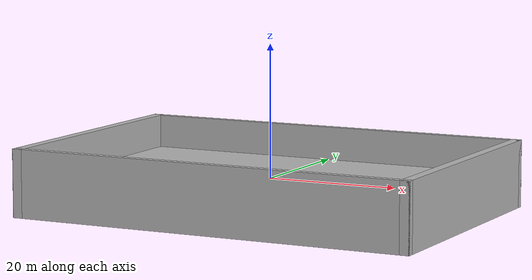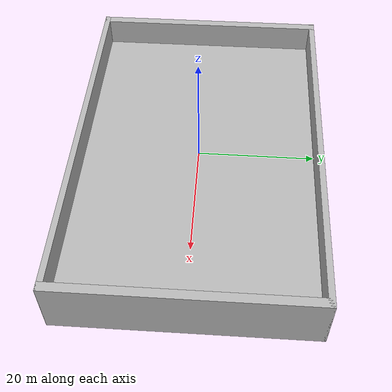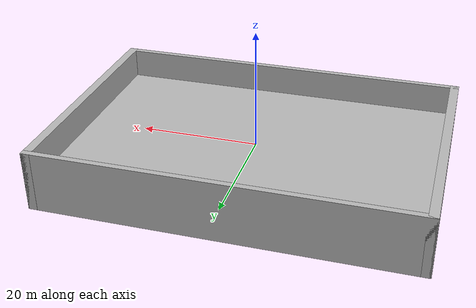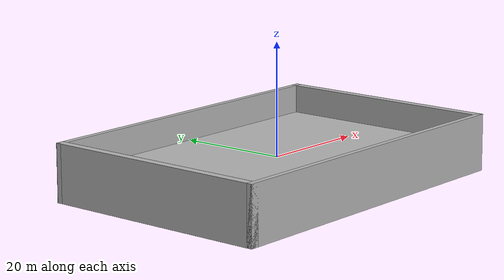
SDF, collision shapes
<?xml version="1.0" ?>
<sdf version="1.9">
  <model name="BasicRoom">
    <static>true</static>

    <link name="link">

      <!-- Visual -->
      <visual name="visual">
        <pose>0 0 0 1.5708 0 0</pose>
        <geometry>
          <mesh>
            <uri>meshes/BasicRoom.glb</uri>
            <scale>1 1 1</scale>
          </mesh>
        </geometry>
      </visual>

      <!-- =========================
           COLLISIONS (hitboxes)
           ========================= -->

      <!-- Suelo -->
      <!-- Centro del objeto está aprox en mitad de altura -->
      <!-- Z total = 10.2 -> mitad = 5.1 -->
      <!-- Suelo grosor ~0.25 -->
      <collision name="floor_collision">
        <pose>0 0 -0.1229 0 0 0</pose>
        <geometry>
          <box>
            <size>60.0 40.0 0.25</size>
          </box>
        </geometry>
      </collision>

      <!-- Pared norte (Y+) -->
      <collision name="wall_north_collision">
        <pose>0 20.5 0.0 0 0 0</pose>
        <geometry>
          <box>
            <size>63.0 1.0 10.2</size>
          </box>
        </geometry>
      </collision>

      <!-- Pared sur (Y-) -->
      <collision name="wall_south_collision">
        <pose>0 -20.5 0.0 0 0 0</pose>
        <geometry>
          <box>
            <size>63.0 1.0 10.2</size>
          </box>
        </geometry>
      </collision>

      <!-- Pared este (X+) -->
      <collision name="wall_east_collision">
        <pose>30.75 0 0.0 0 0 0</pose>
        <geometry>
          <box>
            <size>1.5 42.0 10.2</size>
          </box>
        </geometry>
      </collision>

      <!-- Pared oeste (X-) -->
      <collision name="wall_west_collision">
        <pose>-30.75 0 0.0 0 0 0</pose>
        <geometry>
          <box>
            <size>1.5 42.0 10.2</size>
          </box>
        </geometry>
      </collision>

    </link>
  </model>
</sdf>
